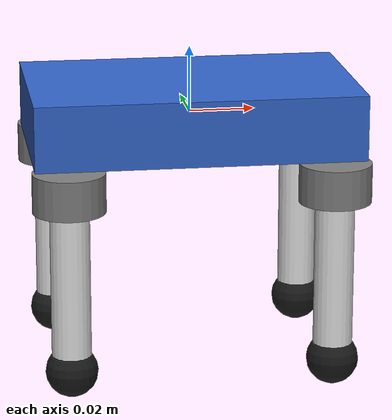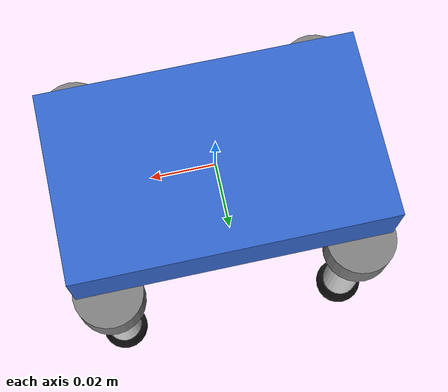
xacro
<?xml version="1.0"?>
<robot name="miniquad_2dof" xmlns:xacro="http://www.ros.org/wiki/xacro">

  <!-- ===== 基本寸法 ===== -->
  <xacro:property name="body_length" value="0.100"/>  <!-- 前後 x [m] -->
  <xacro:property name="body_width"  value="0.060"/>  <!-- 左右 y [m] -->
  <xacro:property name="body_height" value="0.020"/>  <!-- 高さ z [m] (旧 0.025 → 薄型) -->

  <!-- coxa: 2番目のサーボ (femur サーボ) の胴体高さ相当 -->
  <xacro:property name="coxa_length" value="0.012"/>  <!-- coxa リンク長 [m] -->
  <xacro:property name="coxa_radius" value="0.011"/>  <!-- SG90 幅の半径近似 [m] -->

  <!-- femur: 唯一の脚リンク (旧 thigh+shank=95mm → 50mm に短縮) -->
  <xacro:property name="femur_length" value="0.050"/> <!-- 脚長 [m] -->
  <xacro:property name="femur_radius" value="0.006"/> <!-- 脚半径 [m] -->

  <xacro:property name="toe_radius" value="0.008"/>   <!-- 足先球半径 [m] (旧 0.010 → 小型化) -->

  <!-- 脚取り付け位置 (旧設計と同じ) -->
  <xacro:property name="leg_x_front" value="0.040"/>
  <xacro:property name="leg_x_rear"  value="-0.040"/>
  <xacro:property name="leg_y"       value="0.030"/>
  <xacro:property name="hip_z"       value="${-body_height/2.0}"/>

  <!-- 関節可動域 -->
  <!-- coxa (x軸, 外転): ±45° → 足先浮き 6.7mm (±0.785 rad) -->
  <xacro:property name="coxa_lower"      value="-0.785"/>
  <xacro:property name="coxa_upper"      value="0.785"/>
  <!-- femur (y軸, 前後): ±60° (±1.047 rad) -->
  <xacro:property name="femur_lower"     value="-1.047"/>
  <xacro:property name="femur_upper"     value="1.047"/>
  <xacro:property name="joint_effort"    value="0.16"/>   <!-- N·m (SG90 1.6 kg·cm) -->
  <xacro:property name="joint_velocity"  value="6.28"/>   <!-- rad/s -->

  <!-- ===== マテリアル ===== -->
  <material name="body_blue">
    <color rgba="0.20 0.40 0.80 1.0"/>
  </material>
  <material name="coxa_gray">
    <color rgba="0.50 0.50 0.50 1.0"/>
  </material>
  <material name="femur_white">
    <color rgba="0.90 0.90 0.90 1.0"/>
  </material>
  <material name="toe_black">
    <color rgba="0.10 0.10 0.10 1.0"/>
  </material>

  <!-- ===== body リンク ===== -->
  <link name="body">
    <inertial>
      <mass value="0.105"/>
      <origin xyz="0 0 0" rpy="0 0 0"/>
      <inertia ixx="3.50e-5" ixy="0" ixz="0"
               iyy="9.10e-5" iyz="0"
               izz="1.19e-4"/>
    </inertial>
    <visual>
      <origin xyz="0 0 0" rpy="0 0 0"/>
      <geometry>
        <box size="${body_length} ${body_width} ${body_height}"/>
      </geometry>
      <material name="body_blue"/>
    </visual>
    <collision>
      <origin xyz="0 0 0" rpy="0 0 0"/>
      <geometry>
        <box size="${body_length} ${body_width} ${body_height}"/>
      </geometry>
    </collision>
  </link>

  <!-- ===== 脚マクロ ===== -->
  <xacro:macro name="leg_2dof" params="prefix x y">

    <!-- ── Joint 1: body → coxa (x軸, 外転/内転) ── -->
    <joint name="body_to_coxa_${prefix}_j" type="revolute">
      <parent link="body"/>
      <child  link="coxa_${prefix}"/>
      <origin xyz="${x} ${y} ${hip_z}" rpy="0 0 0"/>
      <!-- x軸回転: 正=+y 方向へ脚が傾く (右脚=内転=足先上昇) -->
      <axis xyz="1 0 0"/>
      <limit lower="${coxa_lower}" upper="${coxa_upper}"
             effort="${joint_effort}" velocity="${joint_velocity}"/>
      <dynamics damping="0.02" friction="0.0"/>
    </joint>

    <link name="coxa_${prefix}">
      <inertial>
        <mass value="0.010"/>
        <origin xyz="0 0 ${-coxa_length/2.0}" rpy="0 0 0"/>
        <inertia ixx="4.23e-7" ixy="0" ixz="0"
                 iyy="4.23e-7" iyz="0"
                 izz="6.05e-7"/>
      </inertial>
      <visual>
        <origin xyz="0 0 ${-coxa_length/2.0}" rpy="0 0 0"/>
        <geometry>
          <cylinder length="${coxa_length}" radius="${coxa_radius}"/>
        </geometry>
        <material name="coxa_gray"/>
      </visual>
      <collision>
        <origin xyz="0 0 ${-coxa_length/2.0}" rpy="0 0 0"/>
        <geometry>
          <cylinder length="${coxa_length}" radius="${coxa_radius}"/>
        </geometry>
      </collision>
    </link>

    <!-- ── Joint 2: coxa → femur (y軸, 前後スイング) ── -->
    <joint name="coxa_${prefix}_to_femur_${prefix}_j" type="revolute">
      <parent link="coxa_${prefix}"/>
      <child  link="femur_${prefix}"/>
      <!-- coxa リンク先端から femur が始まる -->
      <origin xyz="0 0 ${-coxa_length}" rpy="0 0 0"/>
      <!-- y軸回転: 正=前方スイング (x正方向に足先が動く) -->
      <axis xyz="0 1 0"/>
      <limit lower="${femur_lower}" upper="${femur_upper}"
             effort="${joint_effort}" velocity="${joint_velocity}"/>
      <dynamics damping="0.02" friction="0.0"/>
    </joint>

    <link name="femur_${prefix}">
      <inertial>
        <mass value="0.003"/>
        <origin xyz="0 0 ${-femur_length/2.0}" rpy="0 0 0"/>
        <inertia ixx="6.52e-7" ixy="0" ixz="0"
                 iyy="6.52e-7" iyz="0"
                 izz="5.40e-8"/>
      </inertial>
      <visual>
        <origin xyz="0 0 ${-femur_length/2.0}" rpy="0 0 0"/>
        <geometry>
          <cylinder length="${femur_length}" radius="${femur_radius}"/>
        </geometry>
        <material name="femur_white"/>
      </visual>
      <collision>
        <origin xyz="0 0 ${-femur_length/2.0}" rpy="0 0 0"/>
        <geometry>
          <cylinder length="${femur_length}" radius="${femur_radius}"/>
        </geometry>
      </collision>
    </link>

    <!--
      toe リンク (足先ゴムチップ: sphere r=0.008, m=0.001 kg)
        I = 2mr²/5 = 2×0.001×0.000064/5 = 2.56e-8
    -->
    <link name="toe_${prefix}">
      <inertial>
        <mass value="0.001"/>
        <origin xyz="0 0 0" rpy="0 0 0"/>
        <inertia ixx="2.56e-8" ixy="0" ixz="0"
                 iyy="2.56e-8" iyz="0"
                 izz="2.56e-8"/>
      </inertial>
      <visual>
        <origin xyz="0 0 0" rpy="0 0 0"/>
        <geometry>
          <sphere radius="${toe_radius}"/>
        </geometry>
        <material name="toe_black"/>
      </visual>
      <collision>
        <origin xyz="0 0 0" rpy="0 0 0"/>
        <geometry>
          <sphere radius="${toe_radius}"/>
        </geometry>
      </collision>
    </link>

    <!-- femur → toe (固定: Genesis が femur に統合) -->
    <joint name="femur_${prefix}_to_toe_${prefix}_j" type="fixed">
      <parent link="femur_${prefix}"/>
      <child  link="toe_${prefix}"/>
      <origin xyz="0 0 ${-femur_length}" rpy="0 0 0"/>
    </joint>

  </xacro:macro>

  <!-- ===== 4脚配置 ===== -->
  <!-- 前右 (fr): +x, -y -->
  <xacro:leg_2dof prefix="fr" x="${ leg_x_front}" y="${-leg_y}"/>
  <!-- 前左 (fl): +x, +y -->
  <xacro:leg_2dof prefix="fl" x="${ leg_x_front}" y="${ leg_y}"/>
  <!-- 後右 (rr): -x, -y -->
  <xacro:leg_2dof prefix="rr" x="${ leg_x_rear}"  y="${-leg_y}"/>
  <!-- 後左 (rl): -x, +y -->
  <xacro:leg_2dof prefix="rl" x="${ leg_x_rear}"  y="${ leg_y}"/>

</robot>
